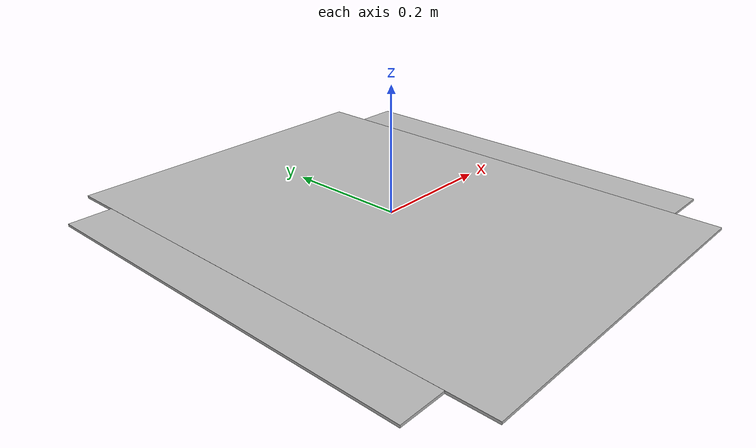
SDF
<?xml version="1.0" ?>
<sdf version="1.4">
  <model name="flat_chessboard">
    <static>0</static>
    <link name="link">

      <inertial>
        <mass>0</mass>
        <inertia>
          <ixx>0.000015</ixx>
          <ixy>0.0</ixy>
          <ixz>0.0</ixz>
          <iyy>0.000015</iyy>
          <iyz>0.0</iyz>
          <izz>0.0000108</izz>
        </inertia>
      </inertial>

      <collision name="collision">
        <pose>0 0 0 0 0 0</pose>
          <geometry>
            <box>
              <size>0.70 0.65 0.0039</size>
            </box>
          </geometry>
        <surface>
          <friction>
            <ode>
              <mu>30.0</mu>
              <mu2>30.0</mu2>
              <fdir1>0 0 0</fdir1>
            </ode>
          </friction>
          <contact>
            <ode>
              <kp>1000000.0</kp>
              <kd>100.0</kd>
              <min_depth>0.0025</min_depth>
              <max_vel>1.0</max_vel>
            </ode>
          </contact>
        </surface>
      </collision>

      <visual name="chessboard support">
         <pose>0 0 0 0 0 0</pose>
         <geometry>
            <box>
              <size>0.70 0.65 0.0039</size>
            </box>
          </geometry>
      </visual>

      <visual name="printed chessboard">
        <pose>0 0 0 0 0 1.570796327</pose>
        <geometry>
          <mesh>
             <uri>meshes/flat_chessboard.obj</uri>
    		<!-- the dae is a cube of 5x5x5 cm and the chessboard printed in A2 is 59.4x42x0.4-->
		<scale> 15.84 11.2 0.08</scale>
          </mesh>
        </geometry>
      </visual>

      <velocity_decay>
        <linear>0.000000</linear>
        <angular>0.000000</angular>
      </velocity_decay>
      <self_collide>0</self_collide>
      <kinematic>0</kinematic>
      <gravity>1</gravity>
    </link>
  </model>
</sdf>
